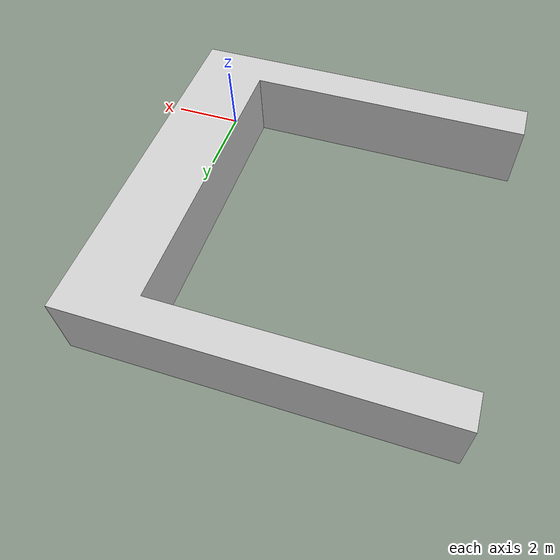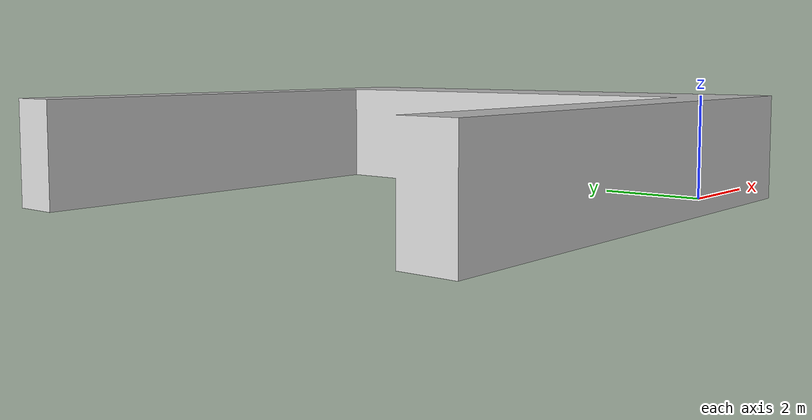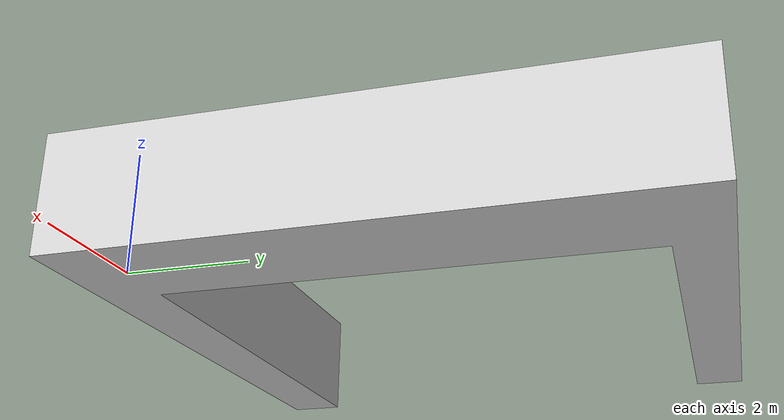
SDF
<?xml version='1.0'?>
<sdf version='1.5'>
   <model name='playboard'>
   <static>true</static>
       <link name="playboard_link">
           <visual name="playboard_visual">
       	<geometry>
           	    <mesh>
           	     	<uri>model://playboard/meshes/playboard.dae</uri>
           	    </mesh>
        	</geometry>
   	   </visual>
	</link>
    </model>
</sdf>
